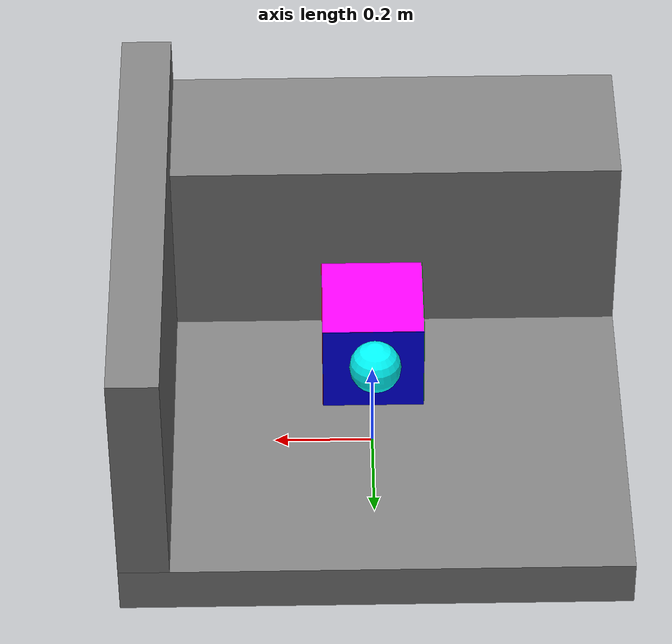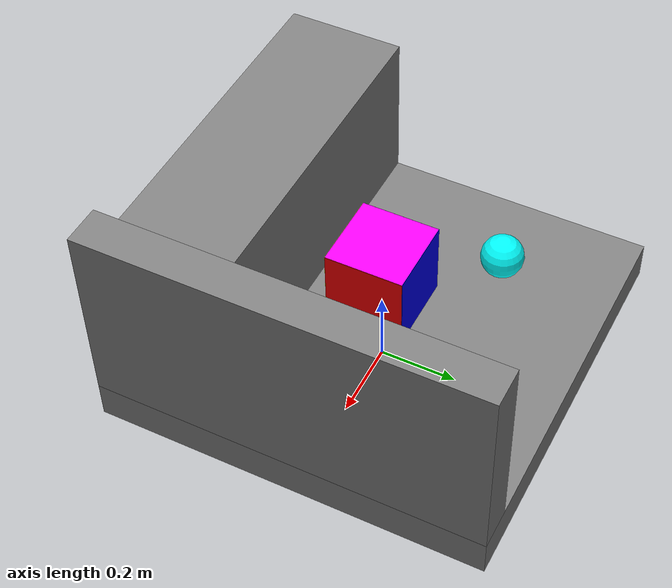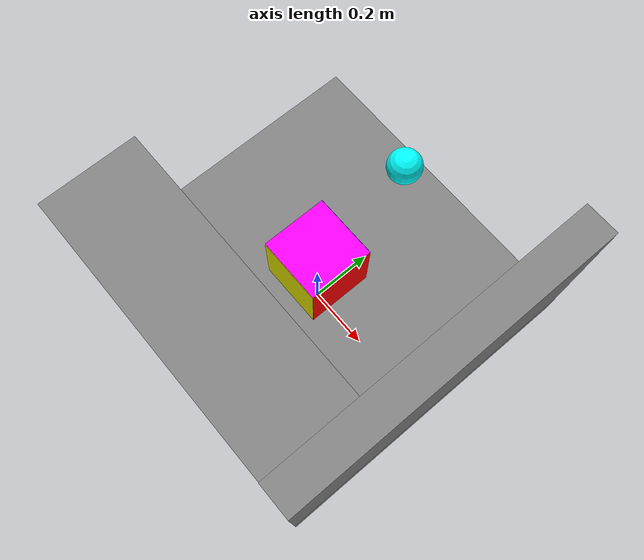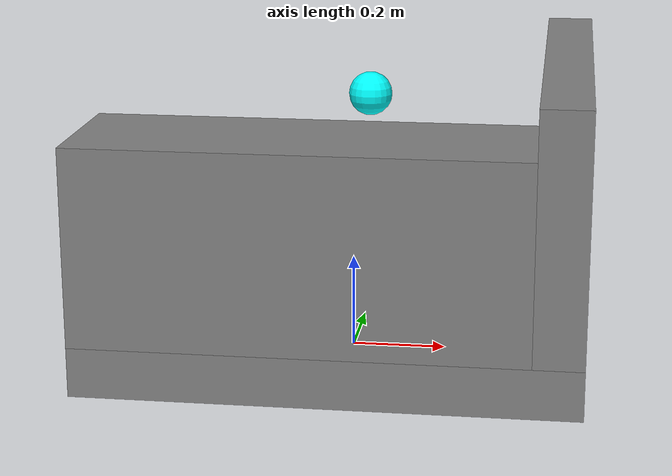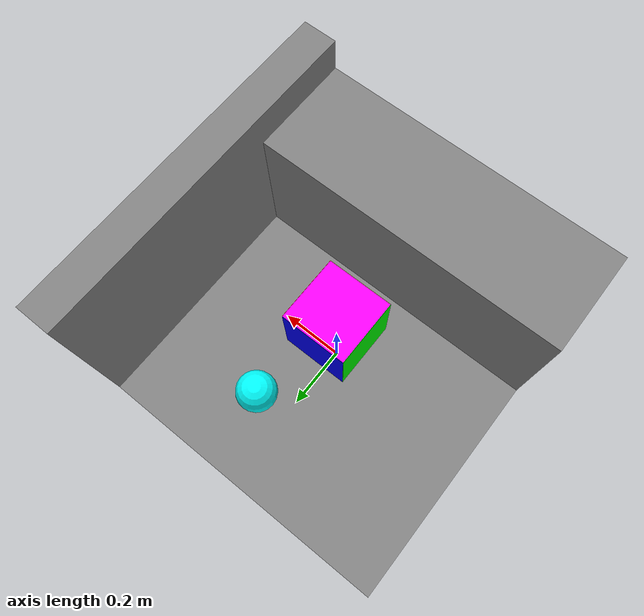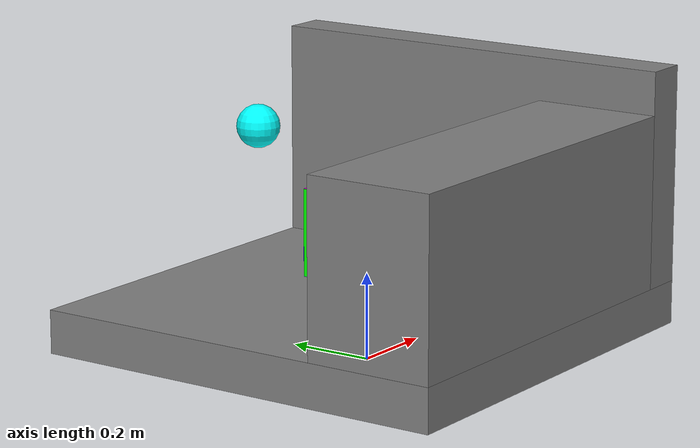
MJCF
<mujoco model="ry_convert">
  <asset />

  <visual>
      <headlight ambient="0.4 0.4 0.4" diffuse="0.8 0.8 0.8" specular="0.1 0.1 0.1"/>
      <map znear="0.01"/>
      <global offwidth="1200" offheight="800"/>
  </visual>

  <default>
    <default class="slider">
        <position forcerange="-150 150" kp="1000" kv="10" ctrlrange="-10 10"/>
    </default>
  </default>

  <actuator>
    <position name="l_joint1" joint="l_joint1" class="slider"/>
    <position name="l_joint2" joint="l_joint2" class="slider" />
    <position name="l_fing" joint="l_fing" class="slider" />
  </actuator>

  <worldbody>
    <camera name="fixed_cam" pos="-1.104 1.275 0.847" xyaxes="-0.728 -0.686 0.000 0.225 -0.238 0.945"/>

    <body name="l_base" pos="0.0 0.3 0.5">
      <body name="l_joint1">
        <joint name="l_joint1" damping="0.1" type="slide" axis="1 0 0" />
        <inertial pos="0 0 0" mass="0.01" diaginertia="1e-5 1e-5 1e-5" />
        <body name="l_joint2">
          <joint name="l_joint2" damping="0.1" type="slide" axis="0 1 0" />
          <inertial pos="0 0 0" mass="0.01" diaginertia="1e-5 1e-5 1e-5" />
          <body name="l_fing">
            <joint name="l_fing" damping="0.1" type="slide" axis="0 0 1" />
            <geom type="sphere" size="0.05" rgba="0 1 1 1" mass="0.1"/>
          </body>
        </body>
      </body>
    </body>
    <body name="base">
      <body name="table" pos="0.0 0.0 0.1">
        <geom type="box" size="0.5 0.5 0.05" />
        <body name="wall" pos="0.45 0.0 0.3">
          <geom type="box" size="0.05 0.5 0.25" />
        </body>
        <body name="box" pos="-0.05 -0.35 0.25">
          <geom type="box" size="0.45 0.15 0.2" />
        </body>
      </body>
    </body>
    <body name="obj" pos="0.0 0.0 0.3">
      <freejoint />

      <!-- Collision + mass go here -->
      <geom type="box"
            size="0.1 0.1 0.1"
            rgba="0 0 0 0"
            mass="0.2"/>

      <!-- Visual faces only (no mass, no collisions) -->

      <!-- +X face -->
      <geom type="box" pos="0.0998 0 0"
            size="0.001 0.1 0.1"
            rgba="1 0 0 1"
            contype="0" conaffinity="0" density="0"/>

      <!-- -X face -->
      <geom type="box" pos="-0.0998 0 0"
            size="0.001 0.1 0.1"
            rgba="0 1 0 1"
            contype="0" conaffinity="0" density="0"/>

      <!-- +Y face -->
      <geom type="box" pos="0 0.0998 0"
            size="0.1 0.001 0.1"
            rgba="0 0 1 1"
            contype="0" conaffinity="0" density="0"/>

      <!-- -Y face -->
      <geom type="box" pos="0 -0.0998 0"
            size="0.1 0.001 0.1"
            rgba="1 1 0 1"
            contype="0" conaffinity="0" density="0"/>

      <!-- +Z face -->
      <geom type="box" pos="0 0 0.0998"
            size="0.1 0.1 0.001"
            rgba="1 0 1 1"
            contype="0" conaffinity="0" density="0"/>

      <!-- -Z face -->
      <geom type="box" pos="0 0 -0.0998"
            size="0.1 0.1 0.001"
            rgba="0 1 1 1"
            contype="0" conaffinity="0" density="0"/>

  </body>

  </worldbody>
</mujoco>
